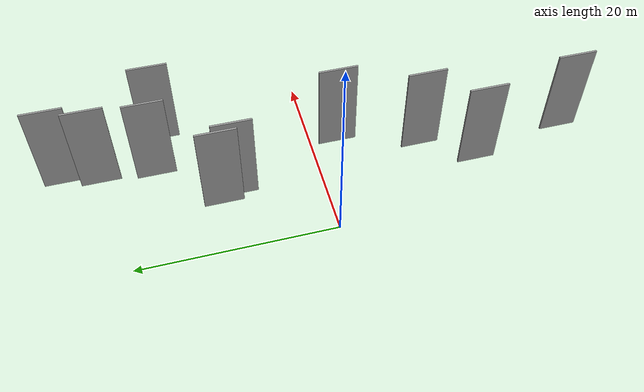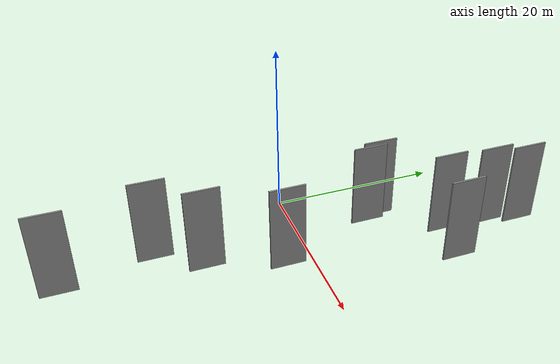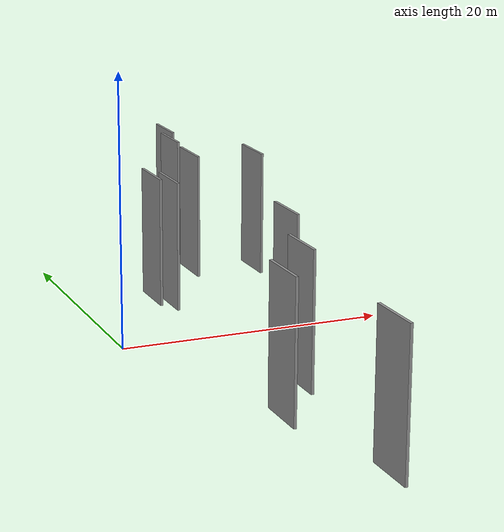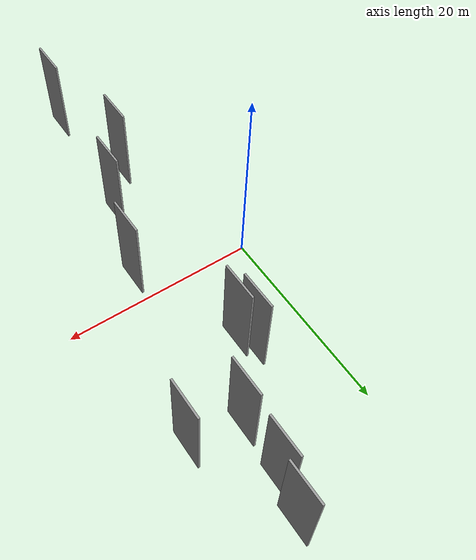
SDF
<sdf version="1.6">
 <world name="default">
  <scene>
   <sky><clouds><speed>12</speed></clouds></sky>
   <ambient>0.4 0.4 0.4 1</ambient>
   <background>0.7 0.7 0.7 1</background>
   <shadows>1</shadows>
  </scene>
  <gravity>0 0 -9.8066</gravity>
  <magnetic_field>6e-06 2.3e-05 -4.2e-05</magnetic_field>
  <physics default="0" name="default_physics" type="ode">
   <ode>
    <solver>
     <type>quick</type>
     <iters>10</iters>
     <sor>1.0</sor>
     <use_dynamic_moi_rescaling>0</use_dynamic_moi_rescaling>
    </solver>
    <constraints>
     <cfm>0</cfm>
     <erp>0.2</erp>
     <contact_max_correcting_vel>100</contact_max_correcting_vel>
     <contact_surface_layer>0.001</contact_surface_layer>
    </constraints>
   </ode>
   <max_step_size>0.004</max_step_size>
   <real_time_factor>1</real_time_factor>
   <real_time_update_rate>250</real_time_update_rate>
  </physics>
  <light name="sun" type="directional">
   <pose>0 0 10 0 0 0</pose>
   <diffuse>0.8 0.8 0.8 1</diffuse>
   <specular>0.2 0.2 0.2 1</specular>
   <attenuation>
    <range>1000</range>
    <constant>0.9</constant>
    <linear>0.01</linear>
    <quadratic>0.001</quadratic>
   </attenuation>
   <direction>-0.5 0.1 -0.9</direction>
  </light>
  <model name="grey_wall_1">
   <static>1</static>
   <pose>6.8354 8.6858 0.0 0.000000 0.000000 1.570796</pose>
   <link name="link">
    <pose>0 0 5.00 0 0 0</pose>
    <collision name="collision"><geometry><box><size>4.00 0.2 10.00</size></box></geometry></collision>
    <visual name="visual">
     <cast_shadows>0</cast_shadows>
     <geometry><box><size>4.00 0.2 10.00</size></box></geometry>
     <material>
      <script>
       <uri>model://grey_wall/materials/scripts</uri>
       <uri>model://grey_wall/materials/textures</uri>
       <name>vrc/grey_wall</name>
      </script>
     </material>
    </visual>
   </link>
  </model>
  <model name="grey_wall_2">
   <static>1</static>
   <pose>8.6988 -11.2021 0.0 0.000000 0.000000 1.570796</pose>
   <link name="link">
    <pose>0 0 5.00 0 0 0</pose>
    <collision name="collision"><geometry><box><size>4.00 0.2 10.00</size></box></geometry></collision>
    <visual name="visual">
     <cast_shadows>0</cast_shadows>
     <geometry><box><size>4.00 0.2 10.00</size></box></geometry>
     <material>
      <script>
       <uri>model://grey_wall/materials/scripts</uri>
       <uri>model://grey_wall/materials/textures</uri>
       <name>vrc/grey_wall</name>
      </script>
     </material>
    </visual>
   </link>
  </model>
  <model name="grey_wall_3">
   <static>1</static>
   <pose>11.4761 16.3057 0.0 0.000000 0.000000 1.570796</pose>
   <link name="link">
    <pose>0 0 5.00 0 0 0</pose>
    <collision name="collision"><geometry><box><size>4.00 0.2 10.00</size></box></geometry></collision>
    <visual name="visual">
     <cast_shadows>0</cast_shadows>
     <geometry><box><size>4.00 0.2 10.00</size></box></geometry>
     <material>
      <script>
       <uri>model://grey_wall/materials/scripts</uri>
       <uri>model://grey_wall/materials/textures</uri>
       <name>vrc/grey_wall</name>
      </script>
     </material>
    </visual>
   </link>
  </model>
  <model name="grey_wall_4">
   <static>1</static>
   <pose>16.5925 15.3095 0.0 0.000000 0.000000 1.570796</pose>
   <link name="link">
    <pose>0 0 5.00 0 0 0</pose>
    <collision name="collision"><geometry><box><size>4.00 0.2 10.00</size></box></geometry></collision>
    <visual name="visual">
     <cast_shadows>0</cast_shadows>
     <geometry><box><size>4.00 0.2 10.00</size></box></geometry>
     <material>
      <script>
       <uri>model://grey_wall/materials/scripts</uri>
       <uri>model://grey_wall/materials/textures</uri>
       <name>vrc/grey_wall</name>
      </script>
     </material>
    </visual>
   </link>
  </model>
  <model name="grey_wall_5">
   <static>1</static>
   <pose>11.3997 -2.8522 0.0 0.000000 0.000000 1.570796</pose>
   <link name="link">
    <pose>0 0 5.00 0 0 0</pose>
    <collision name="collision"><geometry><box><size>4.00 0.2 10.00</size></box></geometry></collision>
    <visual name="visual">
     <cast_shadows>0</cast_shadows>
     <geometry><box><size>4.00 0.2 10.00</size></box></geometry>
     <material>
      <script>
       <uri>model://grey_wall/materials/scripts</uri>
       <uri>model://grey_wall/materials/textures</uri>
       <name>vrc/grey_wall</name>
      </script>
     </material>
    </visual>
   </link>
  </model>
  <model name="grey_wall_6">
   <static>1</static>
   <pose>5.1486 -16.1710 0.0 0.000000 0.000000 1.570796</pose>
   <link name="link">
    <pose>0 0 5.00 0 0 0</pose>
    <collision name="collision"><geometry><box><size>4.00 0.2 10.00</size></box></geometry></collision>
    <visual name="visual">
     <cast_shadows>0</cast_shadows>
     <geometry><box><size>4.00 0.2 10.00</size></box></geometry>
     <material>
      <script>
       <uri>model://grey_wall/materials/scripts</uri>
       <uri>model://grey_wall/materials/textures</uri>
       <name>vrc/grey_wall</name>
      </script>
     </material>
    </visual>
   </link>
  </model>
  <model name="grey_wall_7">
   <static>1</static>
   <pose>12.8049 25.5462 0.0 0.000000 0.000000 1.570796</pose>
   <link name="link">
    <pose>0 0 5.00 0 0 0</pose>
    <collision name="collision"><geometry><box><size>4.00 0.2 10.00</size></box></geometry></collision>
    <visual name="visual">
     <cast_shadows>0</cast_shadows>
     <geometry><box><size>4.00 0.2 10.00</size></box></geometry>
     <material>
      <script>
       <uri>model://grey_wall/materials/scripts</uri>
       <uri>model://grey_wall/materials/textures</uri>
       <name>vrc/grey_wall</name>
      </script>
     </material>
    </visual>
   </link>
  </model>
  <model name="grey_wall_8">
   <static>1</static>
   <pose>11.8966 21.9112 0.0 0.000000 0.000000 1.570796</pose>
   <link name="link">
    <pose>0 0 5.00 0 0 0</pose>
    <collision name="collision"><geometry><box><size>4.00 0.2 10.00</size></box></geometry></collision>
    <visual name="visual">
     <cast_shadows>0</cast_shadows>
     <geometry><box><size>4.00 0.2 10.00</size></box></geometry>
     <material>
      <script>
       <uri>model://grey_wall/materials/scripts</uri>
       <uri>model://grey_wall/materials/textures</uri>
       <name>vrc/grey_wall</name>
      </script>
     </material>
    </visual>
   </link>
  </model>
  <model name="grey_wall_9">
   <static>1</static>
   <pose>6.0280 10.2784 0.0 0.000000 0.000000 1.570796</pose>
   <link name="link">
    <pose>0 0 5.00 0 0 0</pose>
    <collision name="collision"><geometry><box><size>4.00 0.2 10.00</size></box></geometry></collision>
    <visual name="visual">
     <cast_shadows>0</cast_shadows>
     <geometry><box><size>4.00 0.2 10.00</size></box></geometry>
     <material>
      <script>
       <uri>model://grey_wall/materials/scripts</uri>
       <uri>model://grey_wall/materials/textures</uri>
       <name>vrc/grey_wall</name>
      </script>
     </material>
    </visual>
   </link>
  </model>
  <model name="grey_wall_10">
   <static>1</static>
   <pose>7.4108 -26.5784 0.0 0.000000 0.000000 1.570796</pose>
   <link name="link">
    <pose>0 0 5.00 0 0 0</pose>
    <collision name="collision"><geometry><box><size>4.00 0.2 10.00</size></box></geometry></collision>
    <visual name="visual">
     <cast_shadows>0</cast_shadows>
     <geometry><box><size>4.00 0.2 10.00</size></box></geometry>
     <material>
      <script>
       <uri>model://grey_wall/materials/scripts</uri>
       <uri>model://grey_wall/materials/textures</uri>
       <name>vrc/grey_wall</name>
      </script>
     </material>
    </visual>
   </link>
  </model>
 </world>
</sdf>
